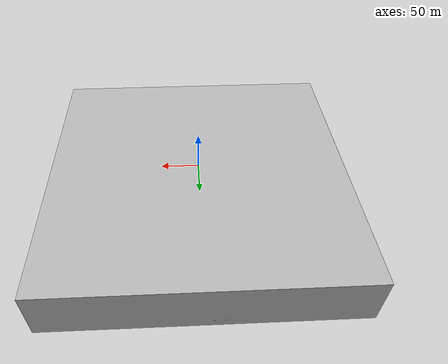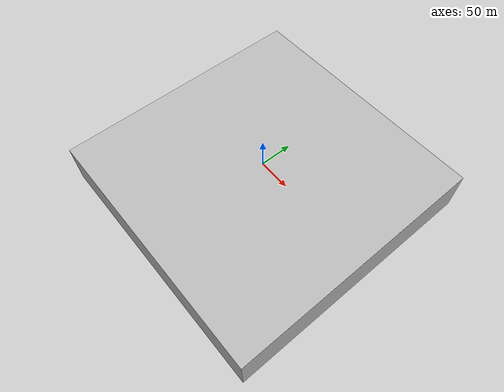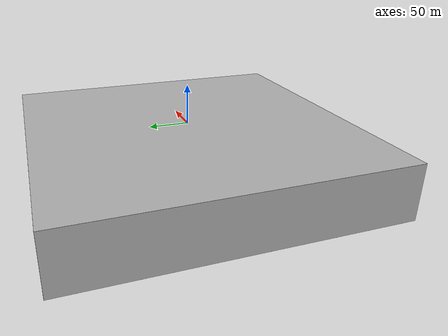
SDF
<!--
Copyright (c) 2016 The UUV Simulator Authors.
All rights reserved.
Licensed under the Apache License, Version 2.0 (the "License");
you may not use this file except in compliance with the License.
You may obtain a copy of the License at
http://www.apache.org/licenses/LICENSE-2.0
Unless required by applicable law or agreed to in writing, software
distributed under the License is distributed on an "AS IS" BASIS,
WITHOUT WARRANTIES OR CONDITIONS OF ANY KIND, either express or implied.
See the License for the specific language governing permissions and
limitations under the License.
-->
<?xml version="1.0" ?>
<sdf version="1.4">
  <world name="dice">
    <physics name="default_physics" default="true" type="ode">
      <max_step_size>0.01</max_step_size>
      <real_time_factor>1</real_time_factor>
      <real_time_update_rate>100</real_time_update_rate>
      <ode>
        <solver>
          <type>quick</type>
          <iters>50</iters>
          <sor>1.2</sor>
        </solver>
      </ode>
    </physics>
    <scene>
      <ambient>0.01 0.01 0.01 1.0</ambient>
      <sky>
        <clouds>
          <speed>12</speed>
        </clouds>
      </sky>
      <shadows>1</shadows>
      <fog>
        <color>0.1 0.2 0.3 1.0</color>
        <type>linear</type>
        <density>0.1</density>
        <start>10</start>
        <end>40</end>
      </fog>
    </scene>

    <!--
      Location of the M/S Herkules ship wreck on the Trondheim fjord, Norway
      Source: http://www.dykkepedia.com/wiki/Herkules
    -->
    <spherical_coordinates>
      <latitude_deg>63.4534333</latitude_deg>
      <longitude_deg>10.4055667</longitude_deg>
    </spherical_coordinates>

    <!-- Global light source -->
    <light type="directional" name="sun_diffuse_1">
      <pose>-200 -200 100 0 0 0</pose>
      <diffuse>0.6 0.6 0.6 1</diffuse>
      <specular>0 0 0 1</specular>
      <direction>-0.3 -0.3 -1</direction>
      <cast_shadows>true</cast_shadows>
    </light>

    <light type="directional" name="sun_diffuse_2">
      <pose>-100 50 200 0 0 0</pose>
      <diffuse>0.9 0.9 0.9 1</diffuse>
      <specular>0 0 0 1</specular>
      <direction>-0.3 -0.3 -1</direction>
      <cast_shadows>true</cast_shadows>
      </light>

    <light type="directional" name="sun_diffuse_3">
      <pose>-150 -130 50 0 0 0</pose>
      <diffuse>0.9 0.9 0.9 1</diffuse>
      <specular>0.2 0.2 0.2 1</specular>
      <direction>0.5 0.5 -1</direction>
      <cast_shadows>true</cast_shadows>
    </light>

    <light type="directional" name="sun_diffuse_4">
      <pose>-150 -130 50 0 0 0</pose>
      <diffuse>0.9 0.9 0.9 1</diffuse>
      <specular>0.2 0.2 0.2 1</specular>
      <direction>0.5 0.5 -1</direction>
      <cast_shadows>true</cast_shadows>
    </light>

    <!-- Global light source -->
    <light type="directional" name="sun_diffuse_5">
      <pose>-200 -200 100 0 0 0</pose>
      <diffuse>0.6 0.6 0.6 1</diffuse>
      <specular>0 0 0 1</specular>
      <direction>-0.3 -0.3 -1</direction>
      <cast_shadows>true</cast_shadows>
    </light>

    <light type="directional" name="sun_diffuse_6">
      <pose>-100 50 200 0 0 0</pose>
      <diffuse>0.9 0.9 0.9 1</diffuse>
      <specular>0 0 0 1</specular>
      <direction>-0.3 -0.3 -1</direction>
      <cast_shadows>true</cast_shadows>
    </light>

    <light type="directional" name="sun_diffuse_7">
      <pose>-150 -130 50 0 0 0</pose>
      <diffuse>0.9 0.9 0.9 1</diffuse>
      <specular>0.2 0.2 0.2 1</specular>
      <direction>0.5 0.5 -1</direction>
      <cast_shadows>true</cast_shadows>
    </light>

    <light type="directional" name="sun_diffuse_8">
      <pose>-150 -130 50 0 0 0</pose>
      <diffuse>0.9 0.9 0.9 1</diffuse>
      <specular>0.2 0.2 0.2 1</specular>
      <direction>0.5 0.5 -1</direction>
      <cast_shadows>true</cast_shadows>
    </light>

    <!-- Global light source -->
    <light type="directional" name="sun_diffuse_9">
      <pose>-200 -200 100 0 0 0</pose>
      <diffuse>0.6 0.6 0.6 1</diffuse>
      <specular>0 0 0 1</specular>
      <direction>-0.3 -0.3 -1</direction>
      <cast_shadows>true</cast_shadows>
    </light>

    <light type="directional" name="sun_diffuse_10">
      <pose>-100 50 200 0 0 0</pose>
      <diffuse>0.9 0.9 0.9 1</diffuse>
      <specular>0 0 0 1</specular>
      <direction>-0.3 -0.3 -1</direction>
      <cast_shadows>true</cast_shadows>
    </light>

    <light type="directional" name="sun_diffuse_11">
      <pose>-150 -130 50 0 0 0</pose>
      <diffuse>0.9 0.9 0.9 1</diffuse>
      <specular>0.2 0.2 0.2 1</specular>
      <direction>0.5 0.5 -1</direction>
      <cast_shadows>true</cast_shadows>
    </light>

    <light type="directional" name="sun_diffuse_12">
      <pose>-150 -130 50 0 0 0</pose>
      <diffuse>0.9 0.9 0.9 1</diffuse>
      <specular>0.2 0.2 0.2 1</specular>
      <direction>0.5 0.5 -1</direction>
      <cast_shadows>true</cast_shadows>
    </light>

    <light type="directional" name="sun_diffuse_13">
      <pose>-200 -200 100 0 0 0</pose>
      <diffuse>0.6 0.6 0.6 1</diffuse>
      <specular>0 0 0 1</specular>
      <direction>-0.3 -0.3 -1</direction>
      <cast_shadows>true</cast_shadows>
    </light>

    <light type="directional" name="sun_diffuse_14">
      <pose>-100 50 200 0 0 0</pose>
      <diffuse>0.9 0.9 0.9 1</diffuse>
      <specular>0 0 0 1</specular>
      <direction>-0.3 -0.3 -1</direction>
      <cast_shadows>true</cast_shadows>
    </light>

    <light type="directional" name="sun_diffuse_15">
      <pose>-150 -130 50 0 0 0</pose>
      <diffuse>0.9 0.9 0.9 1</diffuse>
      <specular>0.2 0.2 0.2 1</specular>
      <direction>0.5 0.5 -1</direction>
      <cast_shadows>true</cast_shadows>
    </light>

    <light type="directional" name="sun_diffuse_16">
      <pose>-150 -130 50 0 0 0</pose>
      <diffuse>0.9 0.9 0.9 1</diffuse>
      <specular>0.2 0.2 0.2 1</specular>
      <direction>0.5 0.5 -1</direction>
      <cast_shadows>true</cast_shadows>
    </light>

    <light type="directional" name="sun_diffuse_17">
      <pose>-200 -200 100 0 0 0</pose>
      <diffuse>0.6 0.6 0.6 1</diffuse>
      <specular>0 0 0 1</specular>
      <direction>-0.3 -0.3 -1</direction>
      <cast_shadows>true</cast_shadows>
    </light>

    <light type="directional" name="sun_diffuse_18">
      <pose>-100 50 200 0 0 0</pose>
      <diffuse>0.9 0.9 0.9 1</diffuse>
      <specular>0 0 0 1</specular>
      <direction>-0.3 -0.3 -1</direction>
      <cast_shadows>true</cast_shadows>
    </light>

    <light type="directional" name="sun_diffuse_19">
      <pose>-150 -130 50 0 0 0</pose>
      <diffuse>0.9 0.9 0.9 1</diffuse>
      <specular>0.2 0.2 0.2 1</specular>
      <direction>0.5 0.5 -1</direction>
      <cast_shadows>true</cast_shadows>
    </light>

    <light type="directional" name="sun_diffuse_20">
      <pose>-150 -130 50 0 0 0</pose>
      <diffuse>0.9 0.9 0.9 1</diffuse>
      <specular>0.2 0.2 0.2 1</specular>
      <direction>0.5 0.5 -1</direction>
      <cast_shadows>true</cast_shadows>
    </light>

    <light type="directional" name="sun_diffuse_21">
      <pose>-200 -200 100 0 0 0</pose>
      <diffuse>0.6 0.6 0.6 1</diffuse>
      <specular>0 0 0 1</specular>
      <direction>-0.3 -0.3 -1</direction>
      <cast_shadows>true</cast_shadows>
    </light>

    <light type="directional" name="sun_diffuse_22">
      <pose>-100 50 200 0 0 0</pose>
      <diffuse>0.9 0.9 0.9 1</diffuse>
      <specular>0 0 0 1</specular>
      <direction>-0.3 -0.3 -1</direction>
      <cast_shadows>true</cast_shadows>
    </light>

    <light type="directional" name="sun_diffuse_23">
      <pose>-150 -130 50 0 0 0</pose>
      <diffuse>0.9 0.9 0.9 1</diffuse>
      <specular>0.2 0.2 0.2 1</specular>
      <direction>0.5 0.5 -1</direction>
      <cast_shadows>true</cast_shadows>
    </light>

    <light type="directional" name="sun_diffuse_24">
      <pose>-150 -130 50 0 0 0</pose>
      <diffuse>0.9 0.9 0.9 1</diffuse>
      <specular>0.2 0.2 0.2 1</specular>
      <direction>0.5 0.5 -1</direction>
      <cast_shadows>true</cast_shadows>
    </light>

    <light type="directional" name="sun_diffuse_25">
      <pose>-200 -200 100 0 0 0</pose>
      <diffuse>0.6 0.6 0.6 1</diffuse>
      <specular>0 0 0 1</specular>
      <direction>-0.3 -0.3 -1</direction>
      <cast_shadows>true</cast_shadows>
    </light>

    <light type="directional" name="sun_diffuse_26">
      <pose>-100 50 200 0 0 0</pose>
      <diffuse>0.9 0.9 0.9 1</diffuse>
      <specular>0 0 0 1</specular>
      <direction>-0.3 -0.3 -1</direction>
      <cast_shadows>true</cast_shadows>
    </light>

    <light type="directional" name="sun_diffuse_27">
      <pose>-150 -130 50 0 0 0</pose>
      <diffuse>0.9 0.9 0.9 1</diffuse>
      <specular>0.2 0.2 0.2 1</specular>
      <direction>0.5 0.5 -1</direction>
      <cast_shadows>true</cast_shadows>
    </light>

    <light type="directional" name="sun_diffuse_28">
      <pose>-150 -130 50 0 0 0</pose>
      <diffuse>0.9 0.9 0.9 1</diffuse>
      <specular>0.2 0.2 0.2 1</specular>
      <direction>0.5 0.5 -1</direction>
      <cast_shadows>true</cast_shadows>
    </light>

    <light type="directional" name="sun_diffuse_29">
      <pose>-200 -200 100 0 0 0</pose>
      <diffuse>0.6 0.6 0.6 1</diffuse>
      <specular>0 0 0 1</specular>
      <direction>-0.3 -0.3 -1</direction>
      <cast_shadows>true</cast_shadows>
    </light>

    <light type="directional" name="sun_diffuse_30">
      <pose>-100 50 200 0 0 0</pose>
      <diffuse>0.9 0.9 0.9 1</diffuse>
      <specular>0 0 0 1</specular>
      <direction>-0.3 -0.3 -1</direction>
      <cast_shadows>true</cast_shadows>
    </light>

    <light type="directional" name="sun_diffuse_31">
      <pose>-150 -130 50 0 0 0</pose>
      <diffuse>0.9 0.9 0.9 1</diffuse>
      <specular>0.2 0.2 0.2 1</specular>
      <direction>0.5 0.5 -1</direction>
      <cast_shadows>true</cast_shadows>
    </light>

    <light type="directional" name="sun_diffuse_32">
      <pose>-150 -130 50 0 0 0</pose>
      <diffuse>0.9 0.9 0.9 1</diffuse>
      <specular>0.2 0.2 0.2 1</specular>
      <direction>0.5 0.5 -1</direction>
      <cast_shadows>true</cast_shadows>
    </light>

    <!-- Seabed terrain around Munkholmen model -->
    <include>
      <uri>model://robosub_2019</uri>
      <pose>0 0 0 0 0 0</pose>
    </include>

    <plugin name="underwater_current_plugin" filename="libuuv_underwater_current_ros_plugin.so">
      <namespace>hydrodynamics</namespace>
      <constant_current>
        <topic>current_velocity</topic>
        <velocity>
          <mean>0</mean>
          <min>0</min>
          <max>5</max>
          <mu>0.0</mu>
          <noiseAmp>0.0</noiseAmp>
        </velocity>

        <horizontal_angle>
          <mean>0</mean>
          <min>-3.141592653589793238</min>
          <max>3.141592653589793238</max>
          <mu>0.0</mu>
          <noiseAmp>0.0</noiseAmp>
        </horizontal_angle>

        <vertical_angle>
          <mean>0</mean>
          <min>-3.141592653589793238</min>
          <max>3.141592653589793238</max>
          <mu>0.0</mu>
          <noiseAmp>0.0</noiseAmp>
        </vertical_angle>
      </constant_current>
    </plugin>

    <plugin name="sc_interface" filename="libuuv_sc_ros_interface_plugin.so"/>

    <gui fullscreen='0'>
      <camera name='user_camera'>
        <pose frame=''>-25 25 -55 0 0 -0.8</pose>
        <view_controller>orbit</view_controller>
        <projection_type>perspective</projection_type>
      </camera>
    </gui>
  </world>
</sdf>

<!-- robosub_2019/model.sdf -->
<sdf version="1.5">
  <model name="herkules_seabed">
    <static>true</static>
    <link name="seabed">
      <collision name="seabed">
        <pose>0 0 -60 0 0 0</pose>
        <geometry>
          <mesh>
            <uri>model://herkules_seabed/meshes/herkules_seabed.dae</uri>
            <scale>4.0 4.0 1.0</scale>
          </mesh>
        </geometry>
      </collision>

      <visual name="seabed">
        <cast_shadows>true</cast_shadows>
        <pose>0 0 -60 0 0 0</pose>
        <geometry>
          <mesh>
            <uri>model://herkules_seabed/meshes/herkules_seabed.dae</uri>
            <scale>4.0 4.0 1.0</scale>
          </mesh>
        </geometry>
        <material>
          <script>
            <uri>file://Media/materials/scripts/sand.material</uri>
            <name>UUVSimulator/SandAndStones</name>
          </script>
        </material>
      </visual>
    </link>

    <link name="ocean_link">
      <visual name="surface">
        <pose>0 0 0 0 0 0</pose>
        <geometry>
          <box>
            <size>400 400 0.1</size>
          </box>
        </geometry>
        <material>
          <script>
            <uri>file://Media/materials/scripts/water.material</uri>
            <name>UUVSimulator/StaticWater</name>
          </script>
        </material>
      </visual>
     <visual name="jiangshi">
        <pose> -39 -44 -12 1.5707 0 1.5707 </pose>
        <geometry>
          <mesh><uri>model://robosub_2019/jiangshiTex.dae</uri><scale>1 1 1</scale></mesh>
        </geometry>
      </visual>

      <collision name="jiangshi">
        <pose> -39 -44 -12 1.5707 0 1.5707 </pose>
        <geometry>
          <mesh><uri>model://robosub_2019/jiangshiTex.dae</uri><scale>1 1 1</scale></mesh>
        </geometry>
      </collision>

     <visual name="vetalas">
        <pose> -41 -37 -12 1.5707 0 6.2831 </pose>
        <geometry>
          <mesh><uri>model://robosub_2019/vetalasTex.dae</uri><scale>1 1 1</scale></mesh>
        </geometry>
      </visual>

      <collision name="vetalas">
        <pose> -41 -37 -12 1.5707 0 6.2831 </pose>
        <geometry>
          <mesh><uri>model://robosub_2019/vetalasTex.dae</uri><scale>1 1 1</scale></mesh>
        </geometry>
      </collision>

     <visual name="draugr">
        <pose> -40 -35.3 -12 1.5707 0 4.1888 </pose>
        <geometry>
          <mesh><uri>model://robosub_2019/draugrTex.dae</uri><scale>1 1 1</scale></mesh>
        </geometry>
      </visual>

      <collision name="draugr">
        <pose> -40 -35.3 -12 1.5707 0 4.1888 </pose>
        <geometry>
          <mesh><uri>model://robosub_2019/draugrTex.dae</uri><scale>1 1 1</scale></mesh>
        </geometry>
      </collision>

     <visual name="aswang">
        <pose> -39 -37 -12 1.5707 0 2.0944 </pose>
        <geometry>
          <mesh><uri>model://robosub_2019/aswangTex.dae</uri><scale>1 1 1</scale></mesh>
        </geometry>
      </visual>

      <collision name="aswang">
        <pose> -39 -37 -12 1.5707 0 2.0944 </pose>
        <geometry>
          <mesh><uri>model://robosub_2019/aswangTex.dae</uri><scale>1 1 1</scale></mesh>
        </geometry>
      </collision>

      <visual name="bottom">
        <pose>0 0 -70.0 0 0 0</pose>
        <geometry>
          <box>
            <size>400 400 0.1</size>
          </box>
        </geometry>
        <material>
          <script>
            <uri>file://Media/materials/scripts/water.material</uri>
            <name>UUVSimulator/SeaWall</name>
          </script>
        </material>
      </visual>

      <visual name="north_wall">
        <pose>0 200 -35.0 0 0 0</pose>
        <geometry>
          <box>
            <size>400 0.1 70</size>
          </box>
        </geometry>
        <material>
          <script>
            <uri>file://Media/materials/scripts/water.material</uri>
            <name>UUVSimulator/SeaWall</name>
          </script>
        </material>
      </visual>

      <visual name="south_wall">
        <pose>0 -200 -35.0 0 0 0</pose>
        <geometry>
          <box>
            <size>400 0.1 70</size>
          </box>
        </geometry>
        <material>
          <script>
            <uri>file://Media/materials/scripts/water.material</uri>
            <name>UUVSimulator/SeaWall</name>
          </script>
        </material>
      </visual>

      <visual name="east_wall">
        <pose>200 0 -35.0 0 0 0</pose>
        <geometry>
          <box>
            <size>0.1 400 70</size>
          </box>
        </geometry>
        <material>
          <script>
            <uri>file://Media/materials/scripts/water.material</uri>
            <name>UUVSimulator/SeaWall</name>
          </script>
        </material>
      </visual>

      <visual name="west_wall">
        <pose>-200 0 -35.0 0 0 0</pose>
        <geometry>
          <box>
            <size>0.1 400 70</size>
          </box>
        </geometry>
        <material>
          <script>
            <uri>file://Media/materials/scripts/water.material</uri>
            <name>UUVSimulator/SeaWall</name>
          </script>
        </material>
      </visual>
    </link>
  </model>
</sdf>
